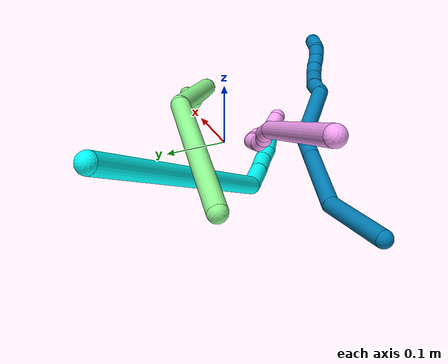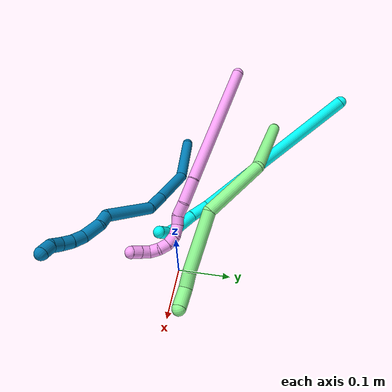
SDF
<sdf version="1.7">
 <world name="default">
  <model name="3">
   <static>0</static>
   <link name="3">
    <collision name="collision-cylinder-e_1_1_4">
     <pose>-0.002557 0.009115 -0.179802 -3.09094 -0.014202 0.546627</pose>
     <geometry><cylinder><radius>0.0125</radius><length>0.360103</length></cylinder></geometry>
     <surface>
      <friction><ode><mu>1.16</mu><mu2>1.16</mu2><slip1>0</slip1><slip2>0</slip2></ode></friction>
      <contact><ode><kp>1e+06</kp><kd>1</kd><max_vel>0</max_vel><min_depth>0.001</min_depth></ode></contact>
     </surface>
    </collision>
    <visual name="visual-cylinder-e_1_1_4">
     <pose>-0.002557 0.009115 -0.179802 -3.09094 -0.014202 0.546627</pose>
     <geometry><cylinder><radius>0.0125</radius><length>0.360103</length></cylinder></geometry>
     <material><ambient>0.003922 1 0.996078 1</ambient></material>
    </visual>
    <collision name="collision-cylinder-e_2_4_5">
     <pose>0.003543 0.010637 -0.378494 2.75937 0.402071 1.62271</pose>
     <geometry><cylinder><radius>0.0125</radius><length>0.044245</length></cylinder></geometry>
     <surface>
      <friction><ode><mu>1.16</mu><mu2>1.16</mu2><slip1>0</slip1><slip2>0</slip2></ode></friction>
      <contact><ode><kp>1e+06</kp><kd>1</kd><max_vel>0</max_vel><min_depth>0.001</min_depth></ode></contact>
     </surface>
    </collision>
    <visual name="visual-cylinder-e_2_4_5">
     <pose>0.003543 0.010637 -0.378494 2.75937 0.402071 1.62271</pose>
     <geometry><cylinder><radius>0.0125</radius><length>0.044245</length></cylinder></geometry>
     <material><ambient>0.003922 1 0.996078 1</ambient></material>
    </visual>
    <collision name="collision-cylinder-e_3_5_6">
     <pose>0.021004 -0.002177 -0.414797 2.85032 0.450987 2.00382</pose>
     <geometry><cylinder><radius>0.0125</radius><length>0.040399</length></cylinder></geometry>
     <surface>
      <friction><ode><mu>1.16</mu><mu2>1.16</mu2><slip1>0</slip1><slip2>0</slip2></ode></friction>
      <contact><ode><kp>1e+06</kp><kd>1</kd><max_vel>0</max_vel><min_depth>0.001</min_depth></ode></contact>
     </surface>
    </collision>
    <visual name="visual-cylinder-e_3_5_6">
     <pose>0.021004 -0.002177 -0.414797 2.85032 0.450987 2.00382</pose>
     <geometry><cylinder><radius>0.0125</radius><length>0.040399</length></cylinder></geometry>
     <material><ambient>0.003922 1 0.996078 1</ambient></material>
    </visual>
    <collision name="collision-cylinder-e_4_6_7">
     <pose>0.03496 -0.01293 -0.443409 2.68275 0.391181 1.40711</pose>
     <geometry><cylinder><radius>0.0125</radius><length>0.02702</length></cylinder></geometry>
     <surface>
      <friction><ode><mu>1.16</mu><mu2>1.16</mu2><slip1>0</slip1><slip2>0</slip2></ode></friction>
      <contact><ode><kp>1e+06</kp><kd>1</kd><max_vel>0</max_vel><min_depth>0.001</min_depth></ode></contact>
     </surface>
    </collision>
    <visual name="visual-cylinder-e_4_6_7">
     <pose>0.03496 -0.01293 -0.443409 2.68275 0.391181 1.40711</pose>
     <geometry><cylinder><radius>0.0125</radius><length>0.02702</length></cylinder></geometry>
     <material><ambient>0.003922 1 0.996078 1</ambient></material>
    </visual>
    <collision name="collision-cylinder-e_5_7_2">
     <pose>0.046785 -0.030478 -0.457822 1.83226 0.492462 0.632852</pose>
     <geometry><cylinder><radius>0.0125</radius><length>0.028233</length></cylinder></geometry>
     <surface>
      <friction><ode><mu>1.16</mu><mu2>1.16</mu2><slip1>0</slip1><slip2>0</slip2></ode></friction>
      <contact><ode><kp>1e+06</kp><kd>1</kd><max_vel>0</max_vel><min_depth>0.001</min_depth></ode></contact>
     </surface>
    </collision>
    <visual name="visual-cylinder-e_5_7_2">
     <pose>0.046785 -0.030478 -0.457822 1.83226 0.492462 0.632852</pose>
     <geometry><cylinder><radius>0.0125</radius><length>0.028233</length></cylinder></geometry>
     <material><ambient>0.003922 1 0.996078 1</ambient></material>
    </visual>
    <collision name="collision-sphere-2">
     <pose>0.053459 -0.042494 -0.461038 0 -0 0</pose>
     <geometry><sphere><radius>0.0125</radius></sphere></geometry>
     <surface>
      <friction><ode><mu>1.16</mu><mu2>1.16</mu2><slip1>0</slip1><slip2>0</slip2></ode></friction>
      <contact><ode><kp>1e+06</kp><kd>1</kd><max_vel>0</max_vel><min_depth>0.001</min_depth></ode></contact>
     </surface>
    </collision>
    <visual name="visual-sphere-2">
     <pose>0.053459 -0.042494 -0.461038 0 -0 0</pose>
     <geometry><sphere><radius>0.0125</radius></sphere></geometry>
     <material><ambient>0.003922 1 0.996078 1</ambient></material>
    </visual>
    <collision name="collision-sphere-7">
     <pose>0.040111 -0.018462 -0.454607 0 -0 0</pose>
     <geometry><sphere><radius>0.0125</radius></sphere></geometry>
     <surface>
      <friction><ode><mu>1.16</mu><mu2>1.16</mu2><slip1>0</slip1><slip2>0</slip2></ode></friction>
      <contact><ode><kp>1e+06</kp><kd>1</kd><max_vel>0</max_vel><min_depth>0.001</min_depth></ode></contact>
     </surface>
    </collision>
    <visual name="visual-sphere-7">
     <pose>0.040111 -0.018462 -0.454607 0 -0 0</pose>
     <geometry><sphere><radius>0.0125</radius></sphere></geometry>
     <material><ambient>0.003922 1 0.996078 1</ambient></material>
    </visual>
    <collision name="collision-sphere-6">
     <pose>0.029808 -0.007398 -0.432211 0 -0 0</pose>
     <geometry><sphere><radius>0.0125</radius></sphere></geometry>
     <surface>
      <friction><ode><mu>1.16</mu><mu2>1.16</mu2><slip1>0</slip1><slip2>0</slip2></ode></friction>
      <contact><ode><kp>1e+06</kp><kd>1</kd><max_vel>0</max_vel><min_depth>0.001</min_depth></ode></contact>
     </surface>
    </collision>
    <visual name="visual-sphere-6">
     <pose>0.029808 -0.007398 -0.432211 0 -0 0</pose>
     <geometry><sphere><radius>0.0125</radius></sphere></geometry>
     <material><ambient>0.003922 1 0.996078 1</ambient></material>
    </visual>
    <collision name="collision-sphere-5">
     <pose>0.0122 0.003043 -0.397383 0 -0 0</pose>
     <geometry><sphere><radius>0.0125</radius></sphere></geometry>
     <surface>
      <friction><ode><mu>1.16</mu><mu2>1.16</mu2><slip1>0</slip1><slip2>0</slip2></ode></friction>
      <contact><ode><kp>1e+06</kp><kd>1</kd><max_vel>0</max_vel><min_depth>0.001</min_depth></ode></contact>
     </surface>
    </collision>
    <visual name="visual-sphere-5">
     <pose>0.0122 0.003043 -0.397383 0 -0 0</pose>
     <geometry><sphere><radius>0.0125</radius></sphere></geometry>
     <material><ambient>0.003922 1 0.996078 1</ambient></material>
    </visual>
    <collision name="collision-sphere-1">
     <geometry><sphere><radius>0.0125</radius></sphere></geometry>
     <surface>
      <friction><ode><mu>1.16</mu><mu2>1.16</mu2><slip1>0</slip1><slip2>0</slip2></ode></friction>
      <contact><ode><kp>1e+06</kp><kd>1</kd><max_vel>0</max_vel><min_depth>0.001</min_depth></ode></contact>
     </surface>
    </collision>
    <visual name="visual-sphere-1">
     <geometry><sphere><radius>0.0125</radius></sphere></geometry>
     <material><ambient>0.003922 1 0.996078 1</ambient></material>
    </visual>
    <collision name="collision-sphere-4">
     <pose>-0.005114 0.01823 -0.359605 0 -0 0</pose>
     <geometry><sphere><radius>0.0125</radius></sphere></geometry>
     <surface>
      <friction><ode><mu>1.16</mu><mu2>1.16</mu2><slip1>0</slip1><slip2>0</slip2></ode></friction>
      <contact><ode><kp>1e+06</kp><kd>1</kd><max_vel>0</max_vel><min_depth>0.001</min_depth></ode></contact>
     </surface>
    </collision>
    <visual name="visual-sphere-4">
     <pose>-0.005114 0.01823 -0.359605 0 -0 0</pose>
     <geometry><sphere><radius>0.0125</radius></sphere></geometry>
     <material><ambient>0.003922 1 0.996078 1</ambient></material>
    </visual>
    <inertial>
     <pose>0.0047 0.00491 -0.246316 0 -0 0</pose>
     <mass>0.5</mass>
     <inertia>
      <ixx>0.005387</ixx>
      <ixy>0</ixy>
      <ixz>0</ixz>
      <iyy>-0.00128</iyy>
      <iyz>0</iyz>
      <izz>-0.000179</izz>
     </inertia>
    </inertial>
   </link>
   <pose>-0.332529 0.287146 0.200442 -1.06488 -0.254092 0.447919</pose>
  </model>
  <model name="4">
   <static>0</static>
   <link name="4">
    <collision name="collision-cylinder-e_1_1_4">
     <pose>0.117311 -0.040926 -0.056853 2.51767 1.03248 2.10819</pose>
     <geometry><cylinder><radius>0.0125</radius><length>0.273269</length></cylinder></geometry>
     <surface>
      <friction><ode><mu>1.16</mu><mu2>1.16</mu2><slip1>0</slip1><slip2>0</slip2></ode></friction>
      <contact><ode><kp>1e+06</kp><kd>1</kd><max_vel>0</max_vel><min_depth>0.001</min_depth></ode></contact>
     </surface>
    </collision>
    <visual name="visual-cylinder-e_1_1_4">
     <pose>0.117311 -0.040926 -0.056853 2.51767 1.03248 2.10819</pose>
     <geometry><cylinder><radius>0.0125</radius><length>0.273269</length></cylinder></geometry>
     <material><ambient>1 0.65098 0.996078 1</ambient></material>
    </visual>
    <collision name="collision-cylinder-e_2_4_5">
     <pose>0.257011 -0.086793 -0.127169 2.78976 1.00113 2.51324</pose>
     <geometry><cylinder><radius>0.0125</radius><length>0.053176</length></cylinder></geometry>
     <surface>
      <friction><ode><mu>1.16</mu><mu2>1.16</mu2><slip1>0</slip1><slip2>0</slip2></ode></friction>
      <contact><ode><kp>1e+06</kp><kd>1</kd><max_vel>0</max_vel><min_depth>0.001</min_depth></ode></contact>
     </surface>
    </collision>
    <visual name="visual-cylinder-e_2_4_5">
     <pose>0.257011 -0.086793 -0.127169 2.78976 1.00113 2.51324</pose>
     <geometry><cylinder><radius>0.0125</radius><length>0.053176</length></cylinder></geometry>
     <material><ambient>1 0.65098 0.996078 1</ambient></material>
    </visual>
    <collision name="collision-cylinder-e_3_5_6">
     <pose>0.290096 -0.092368 -0.149926 3.07364 0.854216 2.99252</pose>
     <geometry><cylinder><radius>0.0125</radius><length>0.028369</length></cylinder></geometry>
     <surface>
      <friction><ode><mu>1.16</mu><mu2>1.16</mu2><slip1>0</slip1><slip2>0</slip2></ode></friction>
      <contact><ode><kp>1e+06</kp><kd>1</kd><max_vel>0</max_vel><min_depth>0.001</min_depth></ode></contact>
     </surface>
    </collision>
    <visual name="visual-cylinder-e_3_5_6">
     <pose>0.290096 -0.092368 -0.149926 3.07364 0.854216 2.99252</pose>
     <geometry><cylinder><radius>0.0125</radius><length>0.028369</length></cylinder></geometry>
     <material><ambient>1 0.65098 0.996078 1</ambient></material>
    </visual>
    <collision name="collision-cylinder-e_4_6_7">
     <pose>0.310275 -0.091978 -0.162432 -2.83344 1.22935 -2.70846</pose>
     <geometry><cylinder><radius>0.0125</radius><length>0.020127</length></cylinder></geometry>
     <surface>
      <friction><ode><mu>1.16</mu><mu2>1.16</mu2><slip1>0</slip1><slip2>0</slip2></ode></friction>
      <contact><ode><kp>1e+06</kp><kd>1</kd><max_vel>0</max_vel><min_depth>0.001</min_depth></ode></contact>
     </surface>
    </collision>
    <visual name="visual-cylinder-e_4_6_7">
     <pose>0.310275 -0.091978 -0.162432 -2.83344 1.22935 -2.70846</pose>
     <geometry><cylinder><radius>0.0125</radius><length>0.020127</length></cylinder></geometry>
     <material><ambient>1 0.65098 0.996078 1</ambient></material>
    </visual>
    <collision name="collision-cylinder-e_5_7_8">
     <pose>0.330973 -0.095346 -0.168135 2.08717 1.14789 1.67547</pose>
     <geometry><cylinder><radius>0.0125</radius><length>0.024599</length></cylinder></geometry>
     <surface>
      <friction><ode><mu>1.16</mu><mu2>1.16</mu2><slip1>0</slip1><slip2>0</slip2></ode></friction>
      <contact><ode><kp>1e+06</kp><kd>1</kd><max_vel>0</max_vel><min_depth>0.001</min_depth></ode></contact>
     </surface>
    </collision>
    <visual name="visual-cylinder-e_5_7_8">
     <pose>0.330973 -0.095346 -0.168135 2.08717 1.14789 1.67547</pose>
     <geometry><cylinder><radius>0.0125</radius><length>0.024599</length></cylinder></geometry>
     <material><ambient>1 0.65098 0.996078 1</ambient></material>
    </visual>
    <collision name="collision-cylinder-e_6_8_9">
     <pose>0.348949 -0.104103 -0.176618 2.51172 0.739265 1.74328</pose>
     <geometry><cylinder><radius>0.0125</radius><length>0.020065</length></cylinder></geometry>
     <surface>
      <friction><ode><mu>1.16</mu><mu2>1.16</mu2><slip1>0</slip1><slip2>0</slip2></ode></friction>
      <contact><ode><kp>1e+06</kp><kd>1</kd><max_vel>0</max_vel><min_depth>0.001</min_depth></ode></contact>
     </surface>
    </collision>
    <visual name="visual-cylinder-e_6_8_9">
     <pose>0.348949 -0.104103 -0.176618 2.51172 0.739265 1.74328</pose>
     <geometry><cylinder><radius>0.0125</radius><length>0.020065</length></cylinder></geometry>
     <material><ambient>1 0.65098 0.996078 1</ambient></material>
    </visual>
    <collision name="collision-cylinder-e_7_9_10">
     <pose>0.359219 -0.11493 -0.189415 2.38219 0.358061 0.851487</pose>
     <geometry><cylinder><radius>0.0125</radius><length>0.020039</length></cylinder></geometry>
     <surface>
      <friction><ode><mu>1.16</mu><mu2>1.16</mu2><slip1>0</slip1><slip2>0</slip2></ode></friction>
      <contact><ode><kp>1e+06</kp><kd>1</kd><max_vel>0</max_vel><min_depth>0.001</min_depth></ode></contact>
     </surface>
    </collision>
    <visual name="visual-cylinder-e_7_9_10">
     <pose>0.359219 -0.11493 -0.189415 2.38219 0.358061 0.851487</pose>
     <geometry><cylinder><radius>0.0125</radius><length>0.020039</length></cylinder></geometry>
     <material><ambient>1 0.65098 0.996078 1</ambient></material>
    </visual>
    <collision name="collision-cylinder-e_8_10_11">
     <pose>0.363648 -0.125676 -0.205388 2.70432 0.090397 0.401643</pose>
     <geometry><cylinder><radius>0.0125</radius><length>0.020321</length></cylinder></geometry>
     <surface>
      <friction><ode><mu>1.16</mu><mu2>1.16</mu2><slip1>0</slip1><slip2>0</slip2></ode></friction>
      <contact><ode><kp>1e+06</kp><kd>1</kd><max_vel>0</max_vel><min_depth>0.001</min_depth></ode></contact>
     </surface>
    </collision>
    <visual name="visual-cylinder-e_8_10_11">
     <pose>0.363648 -0.125676 -0.205388 2.70432 0.090397 0.401643</pose>
     <geometry><cylinder><radius>0.0125</radius><length>0.020321</length></cylinder></geometry>
     <material><ambient>1 0.65098 0.996078 1</ambient></material>
    </visual>
    <collision name="collision-cylinder-e_9_11_12">
     <pose>0.363839 -0.13926 -0.218172 1.94177 -0.072615 -0.106108</pose>
     <geometry><cylinder><radius>0.0125</radius><length>0.020009</length></cylinder></geometry>
     <surface>
      <friction><ode><mu>1.16</mu><mu2>1.16</mu2><slip1>0</slip1><slip2>0</slip2></ode></friction>
      <contact><ode><kp>1e+06</kp><kd>1</kd><max_vel>0</max_vel><min_depth>0.001</min_depth></ode></contact>
     </surface>
    </collision>
    <visual name="visual-cylinder-e_9_11_12">
     <pose>0.363839 -0.13926 -0.218172 1.94177 -0.072615 -0.106108</pose>
     <geometry><cylinder><radius>0.0125</radius><length>0.020009</length></cylinder></geometry>
     <material><ambient>1 0.65098 0.996078 1</ambient></material>
    </visual>
    <collision name="collision-cylinder-e_10_12_2">
     <pose>0.36283 -0.158023 -0.225047 1.90231 -0.028355 -0.039745</pose>
     <geometry><cylinder><radius>0.0125</radius><length>0.020026</length></cylinder></geometry>
     <surface>
      <friction><ode><mu>1.16</mu><mu2>1.16</mu2><slip1>0</slip1><slip2>0</slip2></ode></friction>
      <contact><ode><kp>1e+06</kp><kd>1</kd><max_vel>0</max_vel><min_depth>0.001</min_depth></ode></contact>
     </surface>
    </collision>
    <visual name="visual-cylinder-e_10_12_2">
     <pose>0.36283 -0.158023 -0.225047 1.90231 -0.028355 -0.039745</pose>
     <geometry><cylinder><radius>0.0125</radius><length>0.020026</length></cylinder></geometry>
     <material><ambient>1 0.65098 0.996078 1</ambient></material>
    </visual>
    <collision name="collision-sphere-2">
     <pose>0.362546 -0.167487 -0.228304 0 -0 0</pose>
     <geometry><sphere><radius>0.0125</radius></sphere></geometry>
     <surface>
      <friction><ode><mu>1.16</mu><mu2>1.16</mu2><slip1>0</slip1><slip2>0</slip2></ode></friction>
      <contact><ode><kp>1e+06</kp><kd>1</kd><max_vel>0</max_vel><min_depth>0.001</min_depth></ode></contact>
     </surface>
    </collision>
    <visual name="visual-sphere-2">
     <pose>0.362546 -0.167487 -0.228304 0 -0 0</pose>
     <geometry><sphere><radius>0.0125</radius></sphere></geometry>
     <material><ambient>1 0.65098 0.996078 1</ambient></material>
    </visual>
    <collision name="collision-sphere-12">
     <pose>0.363114 -0.14856 -0.221789 0 -0 0</pose>
     <geometry><sphere><radius>0.0125</radius></sphere></geometry>
     <surface>
      <friction><ode><mu>1.16</mu><mu2>1.16</mu2><slip1>0</slip1><slip2>0</slip2></ode></friction>
      <contact><ode><kp>1e+06</kp><kd>1</kd><max_vel>0</max_vel><min_depth>0.001</min_depth></ode></contact>
     </surface>
    </collision>
    <visual name="visual-sphere-12">
     <pose>0.363114 -0.14856 -0.221789 0 -0 0</pose>
     <geometry><sphere><radius>0.0125</radius></sphere></geometry>
     <material><ambient>1 0.65098 0.996078 1</ambient></material>
    </visual>
    <collision name="collision-sphere-11">
     <pose>0.364565 -0.129961 -0.214555 0 -0 0</pose>
     <geometry><sphere><radius>0.0125</radius></sphere></geometry>
     <surface>
      <friction><ode><mu>1.16</mu><mu2>1.16</mu2><slip1>0</slip1><slip2>0</slip2></ode></friction>
      <contact><ode><kp>1e+06</kp><kd>1</kd><max_vel>0</max_vel><min_depth>0.001</min_depth></ode></contact>
     </surface>
    </collision>
    <visual name="visual-sphere-11">
     <pose>0.364565 -0.129961 -0.214555 0 -0 0</pose>
     <geometry><sphere><radius>0.0125</radius></sphere></geometry>
     <material><ambient>1 0.65098 0.996078 1</ambient></material>
    </visual>
    <collision name="collision-sphere-10">
     <pose>0.362731 -0.121391 -0.196221 0 -0 0</pose>
     <geometry><sphere><radius>0.0125</radius></sphere></geometry>
     <surface>
      <friction><ode><mu>1.16</mu><mu2>1.16</mu2><slip1>0</slip1><slip2>0</slip2></ode></friction>
      <contact><ode><kp>1e+06</kp><kd>1</kd><max_vel>0</max_vel><min_depth>0.001</min_depth></ode></contact>
     </surface>
    </collision>
    <visual name="visual-sphere-10">
     <pose>0.362731 -0.121391 -0.196221 0 -0 0</pose>
     <geometry><sphere><radius>0.0125</radius></sphere></geometry>
     <material><ambient>1 0.65098 0.996078 1</ambient></material>
    </visual>
    <collision name="collision-sphere-9">
     <pose>0.355708 -0.10847 -0.182609 0 -0 0</pose>
     <geometry><sphere><radius>0.0125</radius></sphere></geometry>
     <surface>
      <friction><ode><mu>1.16</mu><mu2>1.16</mu2><slip1>0</slip1><slip2>0</slip2></ode></friction>
      <contact><ode><kp>1e+06</kp><kd>1</kd><max_vel>0</max_vel><min_depth>0.001</min_depth></ode></contact>
     </surface>
    </collision>
    <visual name="visual-sphere-9">
     <pose>0.355708 -0.10847 -0.182609 0 -0 0</pose>
     <geometry><sphere><radius>0.0125</radius></sphere></geometry>
     <material><ambient>1 0.65098 0.996078 1</ambient></material>
    </visual>
    <collision name="collision-sphere-4">
     <pose>0.234622 -0.081851 -0.113707 0 -0 0</pose>
     <geometry><sphere><radius>0.0125</radius></sphere></geometry>
     <surface>
      <friction><ode><mu>1.16</mu><mu2>1.16</mu2><slip1>0</slip1><slip2>0</slip2></ode></friction>
      <contact><ode><kp>1e+06</kp><kd>1</kd><max_vel>0</max_vel><min_depth>0.001</min_depth></ode></contact>
     </surface>
    </collision>
    <visual name="visual-sphere-4">
     <pose>0.234622 -0.081851 -0.113707 0 -0 0</pose>
     <geometry><sphere><radius>0.0125</radius></sphere></geometry>
     <material><ambient>1 0.65098 0.996078 1</ambient></material>
    </visual>
    <collision name="collision-sphere-1">
     <geometry><sphere><radius>0.0125</radius></sphere></geometry>
     <surface>
      <friction><ode><mu>1.16</mu><mu2>1.16</mu2><slip1>0</slip1><slip2>0</slip2></ode></friction>
      <contact><ode><kp>1e+06</kp><kd>1</kd><max_vel>0</max_vel><min_depth>0.001</min_depth></ode></contact>
     </surface>
    </collision>
    <visual name="visual-sphere-1">
     <geometry><sphere><radius>0.0125</radius></sphere></geometry>
     <material><ambient>1 0.65098 0.996078 1</ambient></material>
    </visual>
    <collision name="collision-sphere-8">
     <pose>0.342189 -0.099736 -0.170627 0 -0 0</pose>
     <geometry><sphere><radius>0.0125</radius></sphere></geometry>
     <surface>
      <friction><ode><mu>1.16</mu><mu2>1.16</mu2><slip1>0</slip1><slip2>0</slip2></ode></friction>
      <contact><ode><kp>1e+06</kp><kd>1</kd><max_vel>0</max_vel><min_depth>0.001</min_depth></ode></contact>
     </surface>
    </collision>
    <visual name="visual-sphere-8">
     <pose>0.342189 -0.099736 -0.170627 0 -0 0</pose>
     <geometry><sphere><radius>0.0125</radius></sphere></geometry>
     <material><ambient>1 0.65098 0.996078 1</ambient></material>
    </visual>
    <collision name="collision-sphere-5">
     <pose>0.279401 -0.091735 -0.140631 0 -0 0</pose>
     <geometry><sphere><radius>0.0125</radius></sphere></geometry>
     <surface>
      <friction><ode><mu>1.16</mu><mu2>1.16</mu2><slip1>0</slip1><slip2>0</slip2></ode></friction>
      <contact><ode><kp>1e+06</kp><kd>1</kd><max_vel>0</max_vel><min_depth>0.001</min_depth></ode></contact>
     </surface>
    </collision>
    <visual name="visual-sphere-5">
     <pose>0.279401 -0.091735 -0.140631 0 -0 0</pose>
     <geometry><sphere><radius>0.0125</radius></sphere></geometry>
     <material><ambient>1 0.65098 0.996078 1</ambient></material>
    </visual>
    <collision name="collision-sphere-6">
     <pose>0.300792 -0.093 -0.159221 0 -0 0</pose>
     <geometry><sphere><radius>0.0125</radius></sphere></geometry>
     <surface>
      <friction><ode><mu>1.16</mu><mu2>1.16</mu2><slip1>0</slip1><slip2>0</slip2></ode></friction>
      <contact><ode><kp>1e+06</kp><kd>1</kd><max_vel>0</max_vel><min_depth>0.001</min_depth></ode></contact>
     </surface>
    </collision>
    <visual name="visual-sphere-6">
     <pose>0.300792 -0.093 -0.159221 0 -0 0</pose>
     <geometry><sphere><radius>0.0125</radius></sphere></geometry>
     <material><ambient>1 0.65098 0.996078 1</ambient></material>
    </visual>
    <collision name="collision-sphere-7">
     <pose>0.319757 -0.090956 -0.165643 0 -0 0</pose>
     <geometry><sphere><radius>0.0125</radius></sphere></geometry>
     <surface>
      <friction><ode><mu>1.16</mu><mu2>1.16</mu2><slip1>0</slip1><slip2>0</slip2></ode></friction>
      <contact><ode><kp>1e+06</kp><kd>1</kd><max_vel>0</max_vel><min_depth>0.001</min_depth></ode></contact>
     </surface>
    </collision>
    <visual name="visual-sphere-7">
     <pose>0.319757 -0.090956 -0.165643 0 -0 0</pose>
     <geometry><sphere><radius>0.0125</radius></sphere></geometry>
     <material><ambient>1 0.65098 0.996078 1</ambient></material>
    </visual>
    <inertial>
     <pose>0.208952 -0.071026 -0.108685 0 -0 0</pose>
     <mass>0.5</mass>
     <inertia>
      <ixx>0.000337</ixx>
      <ixy>0</ixy>
      <ixz>0</ixz>
      <iyy>0.002215</iyy>
      <iyz>0</iyz>
      <izz>-0.000986</izz>
     </inertia>
    </inertial>
   </link>
   <pose>-0.398492 0.061692 0.212093 -0.87568 0.474727 0.353177</pose>
  </model>
  <model name="9">
   <static>0</static>
   <link name="9">
    <collision name="collision-cylinder-e_1_1_4">
     <pose>0.044598 -0.015899 -0.02702 2.60974 0.95809 2.17562</pose>
     <geometry><cylinder><radius>0.0125</radius><length>0.10903</length></cylinder></geometry>
     <surface>
      <friction><ode><mu>1.16</mu><mu2>1.16</mu2><slip1>0</slip1><slip2>0</slip2></ode></friction>
      <contact><ode><kp>1e+06</kp><kd>1</kd><max_vel>0</max_vel><min_depth>0.001</min_depth></ode></contact>
     </surface>
    </collision>
    <visual name="visual-cylinder-e_1_1_4">
     <pose>0.044598 -0.015899 -0.02702 2.60974 0.95809 2.17562</pose>
     <geometry><cylinder><radius>0.0125</radius><length>0.10903</length></cylinder></geometry>
     <material><ambient>0 0.490196 0.709804 1</ambient></material>
    </visual>
    <collision name="collision-cylinder-e_2_4_5">
     <pose>0.138516 -0.038677 -0.059032 2.19852 1.40014 2.05299</pose>
     <geometry><cylinder><radius>0.0125</radius><length>0.100092</length></cylinder></geometry>
     <surface>
      <friction><ode><mu>1.16</mu><mu2>1.16</mu2><slip1>0</slip1><slip2>0</slip2></ode></friction>
      <contact><ode><kp>1e+06</kp><kd>1</kd><max_vel>0</max_vel><min_depth>0.001</min_depth></ode></contact>
     </surface>
    </collision>
    <visual name="visual-cylinder-e_2_4_5">
     <pose>0.138516 -0.038677 -0.059032 2.19852 1.40014 2.05299</pose>
     <geometry><cylinder><radius>0.0125</radius><length>0.100092</length></cylinder></geometry>
     <material><ambient>0 0.490196 0.709804 1</ambient></material>
    </visual>
    <collision name="collision-cylinder-e_3_5_6">
     <pose>0.209147 -0.048516 -0.066016 2.16332 1.40492 2.01894</pose>
     <geometry><cylinder><radius>0.0125</radius><length>0.043217</length></cylinder></geometry>
     <surface>
      <friction><ode><mu>1.16</mu><mu2>1.16</mu2><slip1>0</slip1><slip2>0</slip2></ode></friction>
      <contact><ode><kp>1e+06</kp><kd>1</kd><max_vel>0</max_vel><min_depth>0.001</min_depth></ode></contact>
     </surface>
    </collision>
    <visual name="visual-cylinder-e_3_5_6">
     <pose>0.209147 -0.048516 -0.066016 2.16332 1.40492 2.01894</pose>
     <geometry><cylinder><radius>0.0125</radius><length>0.043217</length></cylinder></geometry>
     <material><ambient>0 0.490196 0.709804 1</ambient></material>
    </visual>
    <collision name="collision-cylinder-e_4_6_7">
     <pose>0.274907 -0.057332 -0.046905 0.270678 1.11297 0.169012</pose>
     <geometry><cylinder><radius>0.0125</radius><length>0.099102</length></cylinder></geometry>
     <surface>
      <friction><ode><mu>1.16</mu><mu2>1.16</mu2><slip1>0</slip1><slip2>0</slip2></ode></friction>
      <contact><ode><kp>1e+06</kp><kd>1</kd><max_vel>0</max_vel><min_depth>0.001</min_depth></ode></contact>
     </surface>
    </collision>
    <visual name="visual-cylinder-e_4_6_7">
     <pose>0.274907 -0.057332 -0.046905 0.270678 1.11297 0.169012</pose>
     <geometry><cylinder><radius>0.0125</radius><length>0.099102</length></cylinder></geometry>
     <material><ambient>0 0.490196 0.709804 1</ambient></material>
    </visual>
    <collision name="collision-cylinder-e_5_7_8">
     <pose>0.331231 -0.065584 -0.029043 2.50518 1.24358 2.27987</pose>
     <geometry><cylinder><radius>0.0125</radius><length>0.025084</length></cylinder></geometry>
     <surface>
      <friction><ode><mu>1.16</mu><mu2>1.16</mu2><slip1>0</slip1><slip2>0</slip2></ode></friction>
      <contact><ode><kp>1e+06</kp><kd>1</kd><max_vel>0</max_vel><min_depth>0.001</min_depth></ode></contact>
     </surface>
    </collision>
    <visual name="visual-cylinder-e_5_7_8">
     <pose>0.331231 -0.065584 -0.029043 2.50518 1.24358 2.27987</pose>
     <geometry><cylinder><radius>0.0125</radius><length>0.025084</length></cylinder></geometry>
     <material><ambient>0 0.490196 0.709804 1</ambient></material>
    </visual>
    <collision name="collision-cylinder-e_6_8_9">
     <pose>0.359933 -0.075408 -0.030741 1.36582 1.14715 0.967732</pose>
     <geometry><cylinder><radius>0.0125</radius><length>0.036914</length></cylinder></geometry>
     <surface>
      <friction><ode><mu>1.16</mu><mu2>1.16</mu2><slip1>0</slip1><slip2>0</slip2></ode></friction>
      <contact><ode><kp>1e+06</kp><kd>1</kd><max_vel>0</max_vel><min_depth>0.001</min_depth></ode></contact>
     </surface>
    </collision>
    <visual name="visual-cylinder-e_6_8_9">
     <pose>0.359933 -0.075408 -0.030741 1.36582 1.14715 0.967732</pose>
     <geometry><cylinder><radius>0.0125</radius><length>0.036914</length></cylinder></geometry>
     <material><ambient>0 0.490196 0.709804 1</ambient></material>
    </visual>
    <collision name="collision-cylinder-e_7_9_10">
     <pose>0.388483 -0.084368 -0.026693 0.548868 1.32557 0.432648</pose>
     <geometry><cylinder><radius>0.0125</radius><length>0.024172</length></cylinder></geometry>
     <surface>
      <friction><ode><mu>1.16</mu><mu2>1.16</mu2><slip1>0</slip1><slip2>0</slip2></ode></friction>
      <contact><ode><kp>1e+06</kp><kd>1</kd><max_vel>0</max_vel><min_depth>0.001</min_depth></ode></contact>
     </surface>
    </collision>
    <visual name="visual-cylinder-e_7_9_10">
     <pose>0.388483 -0.084368 -0.026693 0.548868 1.32557 0.432648</pose>
     <geometry><cylinder><radius>0.0125</radius><length>0.024172</length></cylinder></geometry>
     <material><ambient>0 0.490196 0.709804 1</ambient></material>
    </visual>
    <collision name="collision-cylinder-e_8_10_11">
     <pose>0.410249 -0.086305 -0.020434 0.107827 1.2109 0.074672</pose>
     <geometry><cylinder><radius>0.0125</radius><length>0.021458</length></cylinder></geometry>
     <surface>
      <friction><ode><mu>1.16</mu><mu2>1.16</mu2><slip1>0</slip1><slip2>0</slip2></ode></friction>
      <contact><ode><kp>1e+06</kp><kd>1</kd><max_vel>0</max_vel><min_depth>0.001</min_depth></ode></contact>
     </surface>
    </collision>
    <visual name="visual-cylinder-e_8_10_11">
     <pose>0.410249 -0.086305 -0.020434 0.107827 1.2109 0.074672</pose>
     <geometry><cylinder><radius>0.0125</radius><length>0.021458</length></cylinder></geometry>
     <material><ambient>0 0.490196 0.709804 1</ambient></material>
    </visual>
    <collision name="collision-cylinder-e_9_11_12">
     <pose>0.429739 -0.084679 -0.013966 -0.643272 1.22643 -0.460642</pose>
     <geometry><cylinder><radius>0.0125</radius><length>0.020074</length></cylinder></geometry>
     <surface>
      <friction><ode><mu>1.16</mu><mu2>1.16</mu2><slip1>0</slip1><slip2>0</slip2></ode></friction>
      <contact><ode><kp>1e+06</kp><kd>1</kd><max_vel>0</max_vel><min_depth>0.001</min_depth></ode></contact>
     </surface>
    </collision>
    <visual name="visual-cylinder-e_9_11_12">
     <pose>0.429739 -0.084679 -0.013966 -0.643272 1.22643 -0.460642</pose>
     <geometry><cylinder><radius>0.0125</radius><length>0.020074</length></cylinder></geometry>
     <material><ambient>0 0.490196 0.709804 1</ambient></material>
    </visual>
    <collision name="collision-cylinder-e_10_12_2">
     <pose>0.449529 -0.083132 -0.012495 2.7683 1.4427 2.71856</pose>
     <geometry><cylinder><radius>0.0125</radius><length>0.020856</length></cylinder></geometry>
     <surface>
      <friction><ode><mu>1.16</mu><mu2>1.16</mu2><slip1>0</slip1><slip2>0</slip2></ode></friction>
      <contact><ode><kp>1e+06</kp><kd>1</kd><max_vel>0</max_vel><min_depth>0.001</min_depth></ode></contact>
     </surface>
    </collision>
    <visual name="visual-cylinder-e_10_12_2">
     <pose>0.449529 -0.083132 -0.012495 2.7683 1.4427 2.71856</pose>
     <geometry><cylinder><radius>0.0125</radius><length>0.020856</length></cylinder></geometry>
     <material><ambient>0 0.490196 0.709804 1</ambient></material>
    </visual>
    <collision name="collision-sphere-2">
     <pose>0.459872 -0.083618 -0.013735 0 -0 0</pose>
     <geometry><sphere><radius>0.0125</radius></sphere></geometry>
     <surface>
      <friction><ode><mu>1.16</mu><mu2>1.16</mu2><slip1>0</slip1><slip2>0</slip2></ode></friction>
      <contact><ode><kp>1e+06</kp><kd>1</kd><max_vel>0</max_vel><min_depth>0.001</min_depth></ode></contact>
     </surface>
    </collision>
    <visual name="visual-sphere-2">
     <pose>0.459872 -0.083618 -0.013735 0 -0 0</pose>
     <geometry><sphere><radius>0.0125</radius></sphere></geometry>
     <material><ambient>0 0.490196 0.709804 1</ambient></material>
    </visual>
    <collision name="collision-sphere-12">
     <pose>0.439187 -0.082647 -0.011254 0 -0 0</pose>
     <geometry><sphere><radius>0.0125</radius></sphere></geometry>
     <surface>
      <friction><ode><mu>1.16</mu><mu2>1.16</mu2><slip1>0</slip1><slip2>0</slip2></ode></friction>
      <contact><ode><kp>1e+06</kp><kd>1</kd><max_vel>0</max_vel><min_depth>0.001</min_depth></ode></contact>
     </surface>
    </collision>
    <visual name="visual-sphere-12">
     <pose>0.439187 -0.082647 -0.011254 0 -0 0</pose>
     <geometry><sphere><radius>0.0125</radius></sphere></geometry>
     <material><ambient>0 0.490196 0.709804 1</ambient></material>
    </visual>
    <collision name="collision-sphere-11">
     <pose>0.420291 -0.086712 -0.016677 0 -0 0</pose>
     <geometry><sphere><radius>0.0125</radius></sphere></geometry>
     <surface>
      <friction><ode><mu>1.16</mu><mu2>1.16</mu2><slip1>0</slip1><slip2>0</slip2></ode></friction>
      <contact><ode><kp>1e+06</kp><kd>1</kd><max_vel>0</max_vel><min_depth>0.001</min_depth></ode></contact>
     </surface>
    </collision>
    <visual name="visual-sphere-11">
     <pose>0.420291 -0.086712 -0.016677 0 -0 0</pose>
     <geometry><sphere><radius>0.0125</radius></sphere></geometry>
     <material><ambient>0 0.490196 0.709804 1</ambient></material>
    </visual>
    <collision name="collision-sphere-10">
     <pose>0.400207 -0.085898 -0.02419 0 -0 0</pose>
     <geometry><sphere><radius>0.0125</radius></sphere></geometry>
     <surface>
      <friction><ode><mu>1.16</mu><mu2>1.16</mu2><slip1>0</slip1><slip2>0</slip2></ode></friction>
      <contact><ode><kp>1e+06</kp><kd>1</kd><max_vel>0</max_vel><min_depth>0.001</min_depth></ode></contact>
     </surface>
    </collision>
    <visual name="visual-sphere-10">
     <pose>0.400207 -0.085898 -0.02419 0 -0 0</pose>
     <geometry><sphere><radius>0.0125</radius></sphere></geometry>
     <material><ambient>0 0.490196 0.709804 1</ambient></material>
    </visual>
    <collision name="collision-sphere-9">
     <pose>0.376759 -0.082837 -0.029196 0 -0 0</pose>
     <geometry><sphere><radius>0.0125</radius></sphere></geometry>
     <surface>
      <friction><ode><mu>1.16</mu><mu2>1.16</mu2><slip1>0</slip1><slip2>0</slip2></ode></friction>
      <contact><ode><kp>1e+06</kp><kd>1</kd><max_vel>0</max_vel><min_depth>0.001</min_depth></ode></contact>
     </surface>
    </collision>
    <visual name="visual-sphere-9">
     <pose>0.376759 -0.082837 -0.029196 0 -0 0</pose>
     <geometry><sphere><radius>0.0125</radius></sphere></geometry>
     <material><ambient>0 0.490196 0.709804 1</ambient></material>
    </visual>
    <collision name="collision-sphere-4">
     <pose>0.089197 -0.031798 -0.05404 0 -0 0</pose>
     <geometry><sphere><radius>0.0125</radius></sphere></geometry>
     <surface>
      <friction><ode><mu>1.16</mu><mu2>1.16</mu2><slip1>0</slip1><slip2>0</slip2></ode></friction>
      <contact><ode><kp>1e+06</kp><kd>1</kd><max_vel>0</max_vel><min_depth>0.001</min_depth></ode></contact>
     </surface>
    </collision>
    <visual name="visual-sphere-4">
     <pose>0.089197 -0.031798 -0.05404 0 -0 0</pose>
     <geometry><sphere><radius>0.0125</radius></sphere></geometry>
     <material><ambient>0 0.490196 0.709804 1</ambient></material>
    </visual>
    <collision name="collision-sphere-1">
     <geometry><sphere><radius>0.0125</radius></sphere></geometry>
     <surface>
      <friction><ode><mu>1.16</mu><mu2>1.16</mu2><slip1>0</slip1><slip2>0</slip2></ode></friction>
      <contact><ode><kp>1e+06</kp><kd>1</kd><max_vel>0</max_vel><min_depth>0.001</min_depth></ode></contact>
     </surface>
    </collision>
    <visual name="visual-sphere-1">
     <geometry><sphere><radius>0.0125</radius></sphere></geometry>
     <material><ambient>0 0.490196 0.709804 1</ambient></material>
    </visual>
    <collision name="collision-sphere-8">
     <pose>0.343108 -0.06798 -0.032285 0 -0 0</pose>
     <geometry><sphere><radius>0.0125</radius></sphere></geometry>
     <surface>
      <friction><ode><mu>1.16</mu><mu2>1.16</mu2><slip1>0</slip1><slip2>0</slip2></ode></friction>
      <contact><ode><kp>1e+06</kp><kd>1</kd><max_vel>0</max_vel><min_depth>0.001</min_depth></ode></contact>
     </surface>
    </collision>
    <visual name="visual-sphere-8">
     <pose>0.343108 -0.06798 -0.032285 0 -0 0</pose>
     <geometry><sphere><radius>0.0125</radius></sphere></geometry>
     <material><ambient>0 0.490196 0.709804 1</ambient></material>
    </visual>
    <collision name="collision-sphere-5">
     <pose>0.187835 -0.045556 -0.064024 0 -0 0</pose>
     <geometry><sphere><radius>0.0125</radius></sphere></geometry>
     <surface>
      <friction><ode><mu>1.16</mu><mu2>1.16</mu2><slip1>0</slip1><slip2>0</slip2></ode></friction>
      <contact><ode><kp>1e+06</kp><kd>1</kd><max_vel>0</max_vel><min_depth>0.001</min_depth></ode></contact>
     </surface>
    </collision>
    <visual name="visual-sphere-5">
     <pose>0.187835 -0.045556 -0.064024 0 -0 0</pose>
     <geometry><sphere><radius>0.0125</radius></sphere></geometry>
     <material><ambient>0 0.490196 0.709804 1</ambient></material>
    </visual>
    <collision name="collision-sphere-6">
     <pose>0.230459 -0.051476 -0.068009 0 -0 0</pose>
     <geometry><sphere><radius>0.0125</radius></sphere></geometry>
     <surface>
      <friction><ode><mu>1.16</mu><mu2>1.16</mu2><slip1>0</slip1><slip2>0</slip2></ode></friction>
      <contact><ode><kp>1e+06</kp><kd>1</kd><max_vel>0</max_vel><min_depth>0.001</min_depth></ode></contact>
     </surface>
    </collision>
    <visual name="visual-sphere-6">
     <pose>0.230459 -0.051476 -0.068009 0 -0 0</pose>
     <geometry><sphere><radius>0.0125</radius></sphere></geometry>
     <material><ambient>0 0.490196 0.709804 1</ambient></material>
    </visual>
    <collision name="collision-sphere-7">
     <pose>0.319355 -0.063188 -0.025801 0 -0 0</pose>
     <geometry><sphere><radius>0.0125</radius></sphere></geometry>
     <surface>
      <friction><ode><mu>1.16</mu><mu2>1.16</mu2><slip1>0</slip1><slip2>0</slip2></ode></friction>
      <contact><ode><kp>1e+06</kp><kd>1</kd><max_vel>0</max_vel><min_depth>0.001</min_depth></ode></contact>
     </surface>
    </collision>
    <visual name="visual-sphere-7">
     <pose>0.319355 -0.063188 -0.025801 0 -0 0</pose>
     <geometry><sphere><radius>0.0125</radius></sphere></geometry>
     <material><ambient>0 0.490196 0.709804 1</ambient></material>
    </visual>
    <inertial>
     <pose>0.225601 -0.050274 -0.039688 0 -0 0</pose>
     <mass>0.5</mass>
     <inertia>
      <ixx>0.000107</ixx>
      <ixy>0</ixy>
      <ixz>0</ixz>
      <iyy>0.000355</iyy>
      <iyz>0</iyz>
      <izz>-0.000219</izz>
     </inertia>
    </inertial>
   </link>
   <pose>-0.354318 -0.05434 0.025409 1.17491 -0.385367 -0.298067</pose>
  </model>
  <model name="13">
   <static>0</static>
   <link name="13">
    <collision name="collision-cylinder-e_1_1_4">
     <pose>0.089774 0.015666 -0.028792 -2.64329 1.22071 -2.44382</pose>
     <geometry><cylinder><radius>0.0125</radius><length>0.191142</length></cylinder></geometry>
     <surface>
      <friction><ode><mu>1.16</mu><mu2>1.16</mu2><slip1>0</slip1><slip2>0</slip2></ode></friction>
      <contact><ode><kp>1e+06</kp><kd>1</kd><max_vel>0</max_vel><min_depth>0.001</min_depth></ode></contact>
     </surface>
    </collision>
    <visual name="visual-cylinder-e_1_1_4">
     <pose>0.089774 0.015666 -0.028792 -2.64329 1.22071 -2.44382</pose>
     <geometry><cylinder><radius>0.0125</radius><length>0.191142</length></cylinder></geometry>
     <material><ambient>0.564706 0.984314 0.572549 1</ambient></material>
    </visual>
    <collision name="collision-cylinder-e_2_4_5">
     <pose>0.230915 0.000913 -0.084014 2.28613 0.905582 1.63577</pose>
     <geometry><cylinder><radius>0.0125</radius><length>0.130573</length></cylinder></geometry>
     <surface>
      <friction><ode><mu>1.16</mu><mu2>1.16</mu2><slip1>0</slip1><slip2>0</slip2></ode></friction>
      <contact><ode><kp>1e+06</kp><kd>1</kd><max_vel>0</max_vel><min_depth>0.001</min_depth></ode></contact>
     </surface>
    </collision>
    <visual name="visual-cylinder-e_2_4_5">
     <pose>0.230915 0.000913 -0.084014 2.28613 0.905582 1.63577</pose>
     <geometry><cylinder><radius>0.0125</radius><length>0.130573</length></cylinder></geometry>
     <material><ambient>0.564706 0.984314 0.572549 1</ambient></material>
    </visual>
    <collision name="collision-cylinder-e_3_5_6">
     <pose>0.312541 -0.042564 -0.154796 2.85527 0.57951 2.24091</pose>
     <geometry><cylinder><radius>0.0125</radius><length>0.110514</length></cylinder></geometry>
     <surface>
      <friction><ode><mu>1.16</mu><mu2>1.16</mu2><slip1>0</slip1><slip2>0</slip2></ode></friction>
      <contact><ode><kp>1e+06</kp><kd>1</kd><max_vel>0</max_vel><min_depth>0.001</min_depth></ode></contact>
     </surface>
    </collision>
    <visual name="visual-cylinder-e_3_5_6">
     <pose>0.312541 -0.042564 -0.154796 2.85527 0.57951 2.24091</pose>
     <geometry><cylinder><radius>0.0125</radius><length>0.110514</length></cylinder></geometry>
     <material><ambient>0.564706 0.984314 0.572549 1</ambient></material>
    </visual>
    <collision name="collision-cylinder-e_4_6_7">
     <pose>0.34854 -0.05956 -0.21218 2.84808 0.398999 1.87901</pose>
     <geometry><cylinder><radius>0.0125</radius><length>0.029548</length></cylinder></geometry>
     <surface>
      <friction><ode><mu>1.16</mu><mu2>1.16</mu2><slip1>0</slip1><slip2>0</slip2></ode></friction>
      <contact><ode><kp>1e+06</kp><kd>1</kd><max_vel>0</max_vel><min_depth>0.001</min_depth></ode></contact>
     </surface>
    </collision>
    <visual name="visual-cylinder-e_4_6_7">
     <pose>0.34854 -0.05956 -0.21218 2.84808 0.398999 1.87901</pose>
     <geometry><cylinder><radius>0.0125</radius><length>0.029548</length></cylinder></geometry>
     <material><ambient>0.564706 0.984314 0.572549 1</ambient></material>
    </visual>
    <collision name="collision-cylinder-e_5_7_2">
     <pose>0.370578 -0.061212 -0.234926 -2.9104 1.0214 -2.73289</pose>
     <geometry><cylinder><radius>0.0125</radius><length>0.038223</length></cylinder></geometry>
     <surface>
      <friction><ode><mu>1.16</mu><mu2>1.16</mu2><slip1>0</slip1><slip2>0</slip2></ode></friction>
      <contact><ode><kp>1e+06</kp><kd>1</kd><max_vel>0</max_vel><min_depth>0.001</min_depth></ode></contact>
     </surface>
    </collision>
    <visual name="visual-cylinder-e_5_7_2">
     <pose>0.370578 -0.061212 -0.234926 -2.9104 1.0214 -2.73289</pose>
     <geometry><cylinder><radius>0.0125</radius><length>0.038223</length></cylinder></geometry>
     <material><ambient>0.564706 0.984314 0.572549 1</ambient></material>
    </visual>
    <collision name="collision-sphere-2">
     <pose>0.386878 -0.058926 -0.24464 0 -0 0</pose>
     <geometry><sphere><radius>0.0125</radius></sphere></geometry>
     <surface>
      <friction><ode><mu>1.16</mu><mu2>1.16</mu2><slip1>0</slip1><slip2>0</slip2></ode></friction>
      <contact><ode><kp>1e+06</kp><kd>1</kd><max_vel>0</max_vel><min_depth>0.001</min_depth></ode></contact>
     </surface>
    </collision>
    <visual name="visual-sphere-2">
     <pose>0.386878 -0.058926 -0.24464 0 -0 0</pose>
     <geometry><sphere><radius>0.0125</radius></sphere></geometry>
     <material><ambient>0.564706 0.984314 0.572549 1</ambient></material>
    </visual>
    <collision name="collision-sphere-7">
     <pose>0.354279 -0.063499 -0.225212 0 -0 0</pose>
     <geometry><sphere><radius>0.0125</radius></sphere></geometry>
     <surface>
      <friction><ode><mu>1.16</mu><mu2>1.16</mu2><slip1>0</slip1><slip2>0</slip2></ode></friction>
      <contact><ode><kp>1e+06</kp><kd>1</kd><max_vel>0</max_vel><min_depth>0.001</min_depth></ode></contact>
     </surface>
    </collision>
    <visual name="visual-sphere-7">
     <pose>0.354279 -0.063499 -0.225212 0 -0 0</pose>
     <geometry><sphere><radius>0.0125</radius></sphere></geometry>
     <material><ambient>0.564706 0.984314 0.572549 1</ambient></material>
    </visual>
    <collision name="collision-sphere-6">
     <pose>0.3428 -0.055622 -0.199149 0 -0 0</pose>
     <geometry><sphere><radius>0.0125</radius></sphere></geometry>
     <surface>
      <friction><ode><mu>1.16</mu><mu2>1.16</mu2><slip1>0</slip1><slip2>0</slip2></ode></friction>
      <contact><ode><kp>1e+06</kp><kd>1</kd><max_vel>0</max_vel><min_depth>0.001</min_depth></ode></contact>
     </surface>
    </collision>
    <visual name="visual-sphere-6">
     <pose>0.3428 -0.055622 -0.199149 0 -0 0</pose>
     <geometry><sphere><radius>0.0125</radius></sphere></geometry>
     <material><ambient>0.564706 0.984314 0.572549 1</ambient></material>
    </visual>
    <collision name="collision-sphere-5">
     <pose>0.282281 -0.029506 -0.110444 0 -0 0</pose>
     <geometry><sphere><radius>0.0125</radius></sphere></geometry>
     <surface>
      <friction><ode><mu>1.16</mu><mu2>1.16</mu2><slip1>0</slip1><slip2>0</slip2></ode></friction>
      <contact><ode><kp>1e+06</kp><kd>1</kd><max_vel>0</max_vel><min_depth>0.001</min_depth></ode></contact>
     </surface>
    </collision>
    <visual name="visual-sphere-5">
     <pose>0.282281 -0.029506 -0.110444 0 -0 0</pose>
     <geometry><sphere><radius>0.0125</radius></sphere></geometry>
     <material><ambient>0.564706 0.984314 0.572549 1</ambient></material>
    </visual>
    <collision name="collision-sphere-1">
     <geometry><sphere><radius>0.0125</radius></sphere></geometry>
     <surface>
      <friction><ode><mu>1.16</mu><mu2>1.16</mu2><slip1>0</slip1><slip2>0</slip2></ode></friction>
      <contact><ode><kp>1e+06</kp><kd>1</kd><max_vel>0</max_vel><min_depth>0.001</min_depth></ode></contact>
     </surface>
    </collision>
    <visual name="visual-sphere-1">
     <geometry><sphere><radius>0.0125</radius></sphere></geometry>
     <material><ambient>0.564706 0.984314 0.572549 1</ambient></material>
    </visual>
    <collision name="collision-sphere-4">
     <pose>0.179548 0.031332 -0.057585 0 -0 0</pose>
     <geometry><sphere><radius>0.0125</radius></sphere></geometry>
     <surface>
      <friction><ode><mu>1.16</mu><mu2>1.16</mu2><slip1>0</slip1><slip2>0</slip2></ode></friction>
      <contact><ode><kp>1e+06</kp><kd>1</kd><max_vel>0</max_vel><min_depth>0.001</min_depth></ode></contact>
     </surface>
    </collision>
    <visual name="visual-sphere-4">
     <pose>0.179548 0.031332 -0.057585 0 -0 0</pose>
     <geometry><sphere><radius>0.0125</radius></sphere></geometry>
     <material><ambient>0.564706 0.984314 0.572549 1</ambient></material>
    </visual>
    <inertial>
     <pose>0.212628 -0.01138 -0.097659 0 -0 0</pose>
     <mass>0.5</mass>
     <inertia>
      <ixx>-0.000131</ixx>
      <ixy>0</ixy>
      <ixz>0</ixz>
      <iyy>0.00084</iyy>
      <iyz>0</iyz>
      <izz>-0.000773</izz>
     </inertia>
    </inertial>
   </link>
   <pose>-0.33622 0.15834 0.112216 0.547617 -0.419991 -0.464719</pose>
  </model>
 </world>
</sdf>
